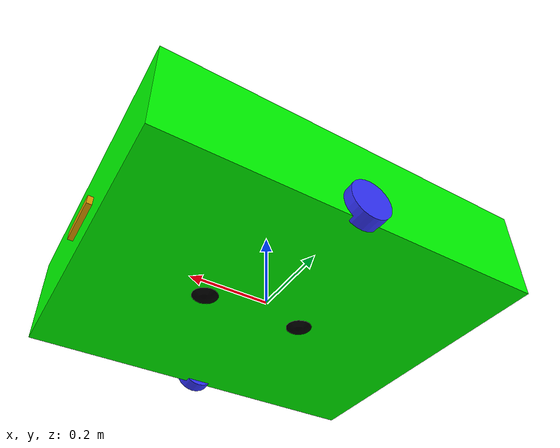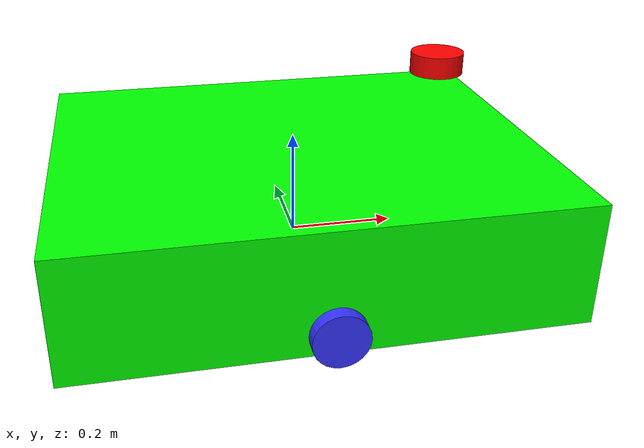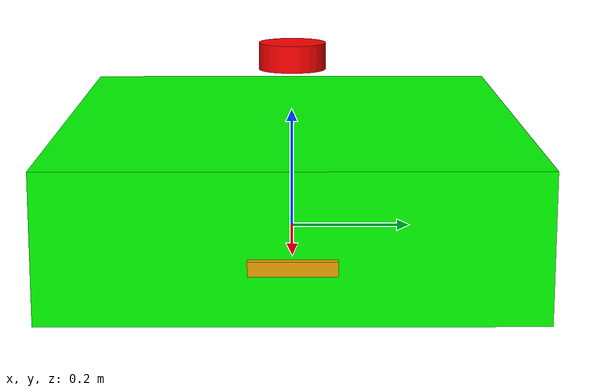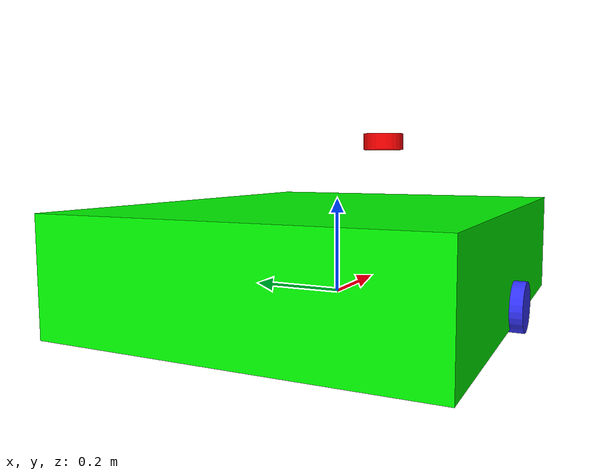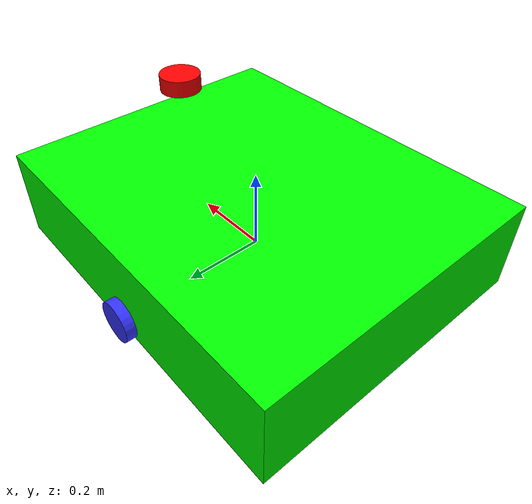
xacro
<?xml version="1.0"?>
<robot xmlns:xacro="http://www.ros.org/wiki/xacro"  name="robot">

    <xacro:include filename="robot_core.xacro" />

    <xacro:include filename="gazebo_control.xacro" />
    <xacro:include filename="lidar.xacro" />
    <xacro:include filename="camera.xacro" />
    <xacro:include filename="imu.xacro" />
    <xacro:include filename="ros2_control.xacro" />
</robot>

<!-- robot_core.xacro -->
<robot xmlns:xacro="http://www.ros.org/wiki/xacro" >

    <xacro:include filename="inertial_macros.xacro"/>

    <material name="white">
        <color rgba="1 1 1 1" />
    </material>

    <material name="orange">
        <color rgba="1 0.3 0.1 1"/>
    </material>

    <material name="blue">
        <color rgba="0.2 0.2 1 1"/>
    </material>

    <material name="black">
        <color rgba="0 0 0 1"/>
    </material>

    <material name="red">
        <color rgba="1 0 0 1"/>
    </material>

    <material name="green">
        <color rgba="0 1 0 1"/>
    </material>

    <!-- BASE LINK -->

    <link name="base_link">

    </link>

    <link name="base_footprint"/>
    <joint name="base_joint" type="fixed">
    <parent link="base_link"/>
    <child link ="base_footprint"/>
    <origin xyz="0 0 0" rpy="0 0 0"/>
    </joint>

    <!-- CHASSIS LINK -->

    <joint name="chassis_joint" type="fixed">
        <parent link="base_link"/>
        <child link="chassis"/>
        <origin xyz="-0.15 0 0"/>
    </joint>

    <link name="chassis">
        <visual>
            <origin xyz="0.15 0 0.075"/>
            <geometry>
                <box size="0.91 0.75 0.228"/>
            </geometry>
            <material name="green"/>
        </visual>
        <collision>
            <origin xyz="0.15 0 0.075"/>
            <geometry>
                <box size="0.91 0.75 0.228"/>
            </geometry>
        </collision>
        <xacro:inertial_box mass="0.5" x="0.3" y="0.3" z="0.15">
            <origin xyz="0.15 0 0.075" rpy="0 0 0"/>
        </xacro:inertial_box>
    </link>

    <gazebo reference="chassis">
        <material>Gazebo/White</material>
    </gazebo>

    <!-- LEFT WHEEL LINK -->

    <joint name="left_wheel_joint" type="continuous">
        <parent link="base_link"/>
        <child link="left_wheel"/>
        <origin xyz="0 0.380 0" rpy="-${pi/2} 0 0" />
        <axis xyz="0 0 1"/>
    </joint>

    <link name="left_wheel">
        <visual>
            <geometry>
                <cylinder radius="0.05" length="0.04"/>
            </geometry>
            <material name="blue"/>
        </visual>
        <collision>
            <geometry>
                <cylinder radius="0.05" length="0.04"/>
            </geometry>
        </collision>
        <xacro:inertial_cylinder mass="0.1" length="0.04" radius="0.05">
            <origin xyz="0 0 0" rpy="0 0 0"/>
        </xacro:inertial_cylinder>
    </link>

    <gazebo reference="left_wheel">
        <material>Gazebo/Blue</material>
    </gazebo>

    <!-- RIGHT WHEEL LINK -->

    <joint name="right_wheel_joint" type="continuous">
        <parent link="base_link"/>
        <child link="right_wheel"/>
        <origin xyz="0 -0.380 0" rpy="${pi/2} 0 0" />
        <axis xyz="0 0 -1"/>
    </joint>

    <link name="right_wheel">
        <visual>
            <geometry>
                <cylinder radius="0.05" length="0.04"/>
            </geometry>
            <material name="blue"/>
        </visual>
        <collision>
            <geometry>
                <cylinder radius="0.05" length="0.04"/>
            </geometry>
        </collision>
        <xacro:inertial_cylinder mass="0.1" length="0.04" radius="0.05">
            <origin xyz="0 0 0" rpy="0 0 0"/>
        </xacro:inertial_cylinder>
    </link>

    <gazebo reference="right_wheel">
        <material>Gazebo/Blue</material>
    </gazebo>

    <!-- CASTER WHEEL LINK -->

    <joint name="front_caster_wheel_joint" type="fixed">
        <parent link="chassis"/>
        <child link="front_caster_wheel"/>
        <origin xyz="0.31 0 0"/>
    </joint>

    <link name="front_caster_wheel">
        <visual>
            <geometry>
                <sphere radius="0.05"/>
            </geometry>
            <material name="black"/>
        </visual>
        <collision>
            <geometry>
                <sphere radius="0.05"/>
            </geometry>
        </collision>
        <xacro:inertial_sphere mass="0.1" radius="0.05">
            <origin xyz="0 0 0" rpy="0 0 0"/>
        </xacro:inertial_sphere>
    </link>

    <gazebo reference="front_caster_wheel">
        <material>Gazebo/Black</material>
        <mu1 value="0.001"/>
        <mu2 value="0.001"/>
    </gazebo>

    <!-- MIRROR REAR CASTER WHEEL LINK -->
    <joint name="mirror_rear_caster_wheel_joint" type="fixed">
        <parent link="chassis"/>
        <child link="mirror_rear_caster_wheel"/>
        <origin xyz="0.06 0 0"/> <!-- Mirrored origin -->
    </joint>

    <link name="mirror_rear_caster_wheel">
        <visual>
            <geometry>
                <sphere radius="0.05"/>
            </geometry>
            <material name="black"/>
        </visual>
        <collision>
            <geometry>
                <sphere radius="0.05"/>
            </geometry>
        </collision>
        <xacro:inertial_sphere mass="0.1" radius="0.05">
            <origin xyz="0 0 0" rpy="0 0 0"/>
        </xacro:inertial_sphere>
    </link>

    <gazebo reference="mirror_rear_caster_wheel">
        <material>Gazebo/Black</material>
        <mu1 value="0.001"/>
        <mu2 value="0.001"/>
    </gazebo>

</robot>

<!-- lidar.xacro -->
<robot xmlns:xacro="http://www.ros.org/wiki/xacro" >

    <joint name="laser_joint" type="fixed">
        <parent link="chassis"/>
        <child link="laser_frame"/>
        <origin xyz="0.43 0 0.330" rpy="0 0 0"/>
    </joint>

    <link name="laser_frame">
        <visual>
            <geometry>
                <cylinder radius="0.05" length="0.04"/>
            </geometry>
            <material name="red"/>
        </visual>
        <collision>
            <geometry>
                <cylinder radius="0.05" length="0.04"/>
            </geometry>
        </collision>
        <xacro:inertial_cylinder mass="0.1" length="0.04" radius="0.05">
            <origin xyz="0 0 0" rpy="0 0 0"/>
        </xacro:inertial_cylinder>
    </link>

    <gazebo reference="laser_frame">
        <material>Gazebo/Red</material>

        <sensor name="laser" type="ray">
            <pose> 0 0 0 0 0 0 </pose>
            <visualize>true</visualize>
            <update_rate>10</update_rate>
            <ray>
                <scan>
                    <horizontal>
                        <samples>360</samples>
                        <resolution>1</resolution>
                        <min_angle>-3.14</min_angle>
                        <max_angle>3.14</max_angle>
                    </horizontal>
                </scan>
                <range>
                    <min>0.3</min>
                    <max>12</max>
                    <resolution>0.01</resolution>
                </range>
            </ray>
            <plugin name="laser_controller" filename="libgazebo_ros_ray_sensor.so">
                <ros>
                    <argument>~/out:=scan</argument>
                </ros>
                <output_type>sensor_msgs/LaserScan</output_type>
                <frame_name>laser_frame</frame_name>
            </plugin>
        </sensor>
    </gazebo>

</robot>

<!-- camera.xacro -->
<robot xmlns:xacro="http://www.ros.org/wiki/xacro" >

    <link name="camera_link">
    <visual>
        <origin xyz="0 0 0" rpy="0 0 0"/>
        <geometry>
        <box size="0.015 0.130 0.022"/>
        </geometry>
    </visual>

    <collision>
        <origin xyz="0 0 0" rpy="0 0 0"/>
        <geometry>
        <box size="0.015 0.130 0.022"/>
        </geometry>
    </collision>

    <inertial>
        <origin xyz="0 0 0" rpy="0 0 0"/>
        <mass value="0.035"/>
        <inertia ixx="0.001"  ixy="0"  ixz="0" iyy="0.001" iyz="0" izz="0.001" />
    </inertial>
    </link>

    <joint name="camera_joint" type="fixed">
    <parent link="base_link"/>
    <child link="camera_link"/>
    <origin xyz="0.460 0 0.05" rpy="0 0 0"/>
    </joint>

    <link name="camera_depth_frame"/>

    <joint name="camera_depth_joint" type="fixed">
    <origin xyz="0 0 0" rpy="${-pi/2} 0 ${-pi/2}"/>
    <parent link="camera_link"/>
    <child link="camera_depth_frame"/>
    </joint>

    <gazebo reference="camera_link">
    <sensor name="depth_camera" type="depth">
        <visualize>true</visualize>
        <update_rate>30.0</update_rate>
        <camera name="camera">
        <horizontal_fov>1.047198</horizontal_fov>
        <image>
            <width>640</width>
            <height>480</height>
            <format>R8G8B8</format>
        </image>
        <clip>
            <near>0.05</near>
            <far>15</far>
        </clip>
        </camera>
        <plugin name="depth_camera_controller" filename="libgazebo_ros_camera.so">
        <baseline>0.2</baseline>
        <alwaysOn>true</alwaysOn>
        <updateRate>0.0</updateRate>
        <frame_name>camera_depth_frame</frame_name>
        <pointCloudCutoff>0.5</pointCloudCutoff>
        <pointCloudCutoffMax>3.0</pointCloudCutoffMax>
        <distortionK1>0</distortionK1>
        <distortionK2>0</distortionK2>
        <distortionK3>0</distortionK3>
        <distortionT1>0</distortionT1>
        <distortionT2>0</distortionT2>
        <CxPrime>0</CxPrime>
        <Cx>0</Cx>
        <Cy>0</Cy>
        <focalLength>0</focalLength>
        <hackBaseline>0</hackBaseline>
        </plugin>
    </sensor>
    </gazebo>
</robot>

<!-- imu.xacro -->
<robot xmlns:xacro="http://www.ros.org/wiki/xacro" >

<xacro:include filename="inertial_macros.xacro"/>

    <joint name="imu_joint" type="fixed">
        <parent link="chassis"/>
        <child link="imu_link"/>
        <origin xyz="0.0 0.0 0.175" rpy="0 0 0"/>
    </joint>

<link name="imu_link">

  <xacro:inertial_box mass="0.001" x="0.001" y="0.001" z="0.15">
    <origin xyz="0.15 0 0.075" rpy="0 0 0"/>
  </xacro:inertial_box>
  </link>

</robot>
